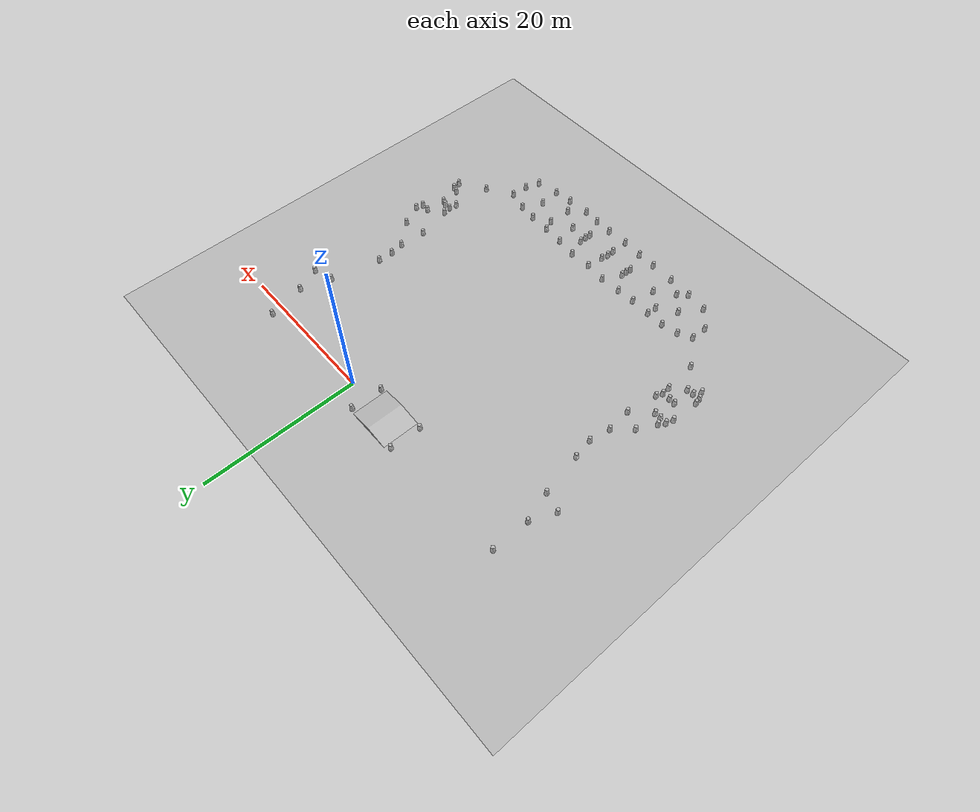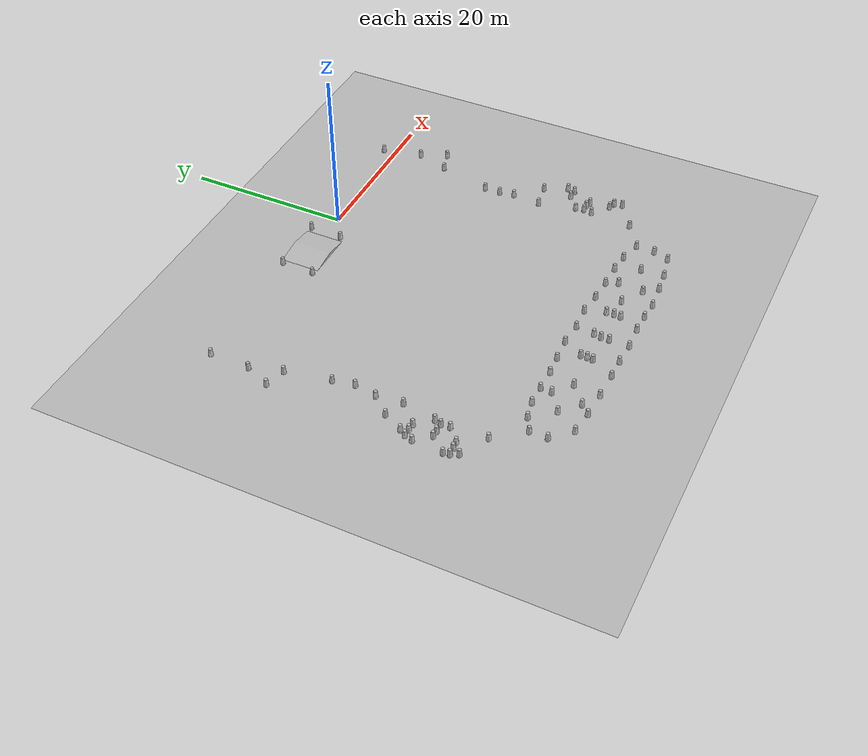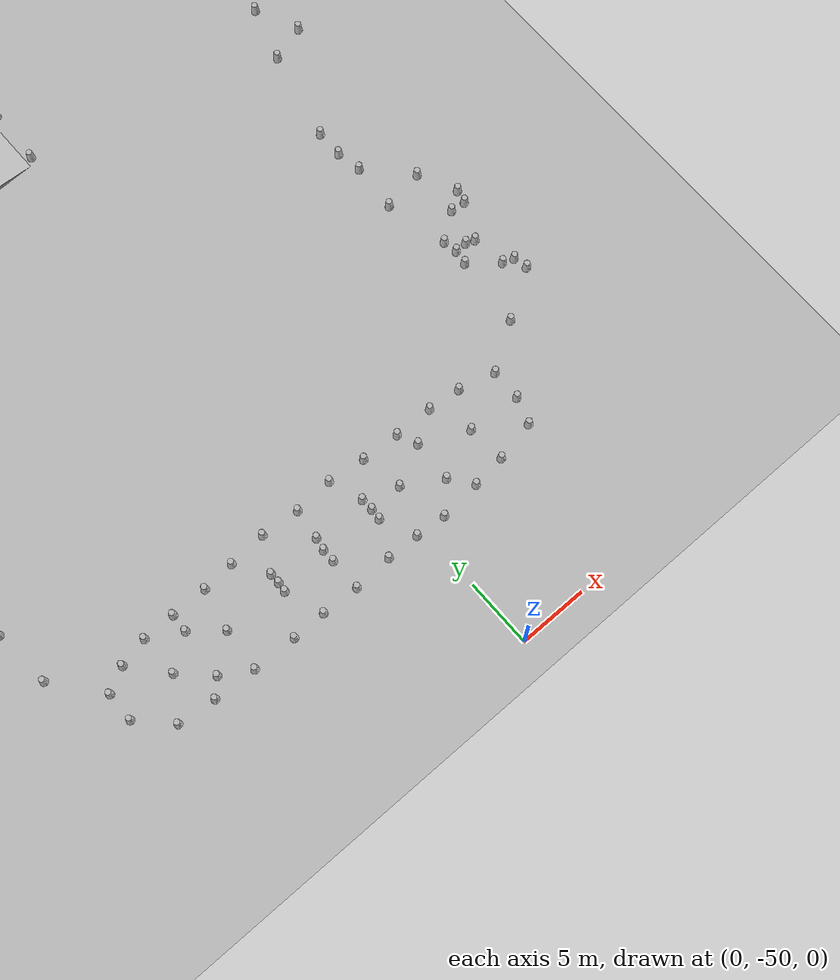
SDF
<?xml version="1.0"?>
<sdf version="1.9">
  <world name="default">
    <scene>
      <ambient>0.8 0.8 0.8 1</ambient>
      <background>0.6 0.75 0.9 1</background>
      <grid>false</grid>
      <shadows>1</shadows>
    </scene>

    <spherical_coordinates>
      <surface_model>EARTH_WGS84</surface_model>
      <world_frame_orientation>ENU</world_frame_orientation>
      <latitude_deg>42.66791</latitude_deg>
      <longitude_deg>-83.21958</longitude_deg>
      <elevation>286</elevation>
      <heading_deg>0</heading_deg>
    </spherical_coordinates>

    <physics name="1ms" type="ODE">
      <max_step_size>0.001</max_step_size>
      <real_time_factor>1.0</real_time_factor>
      <real_time_update_rate>1000</real_time_update_rate>
    </physics>
    <gravity>0 0 -9.8</gravity>
    <magnetic_field>6e-06 2.3e-05 -4.2e-05</magnetic_field>
    <atmosphere type="adiabatic"/>

    <plugin filename="gz-sim-physics-system" name="gz::sim::systems::Physics"/>
    <plugin filename="gz-sim-user-commands-system" name="gz::sim::systems::UserCommands"/>
    <plugin filename="gz-sim-scene-broadcaster-system" name="gz::sim::systems::SceneBroadcaster"/>
    <plugin filename="gz-sim-contact-system" name="gz::sim::systems::Contact"/>
    <plugin filename="gz-sim-imu-system" name="gz::sim::systems::Imu"/>
    <plugin filename="gz-sim-navsat-system" name="gz::sim::systems::NavSat"/>

    <light name="sun" type="directional">
      <cast_shadows>true</cast_shadows>
      <pose>0 0 10 0 0 0</pose>
      <diffuse>0.8 0.8 0.8 1</diffuse>
      <specular>0.2 0.2 0.2 1</specular>
      <direction>-0.5 0.1 -0.9</direction>
    </light>

    <include>
      <uri>model://igvc2027_course</uri>
      <name>course</name>
      <pose>0 0 0 0 0 0</pose>
    </include>

    <include>
      <uri>model://igvc2027_ramp</uri>
      <name>ramp</name>
      <pose>-6.386 0.000 0 0 0 0.0000</pose>
    </include>

    <include>
      <uri>model://igvc2027_barrel_orange</uri>
      <static>true</static>
      <name>barrel_001_orange</name>
      <pose>-28.789 -28.298 0 0 0 0</pose>
    </include>
    <include>
      <uri>model://igvc2027_barrel_orange</uri>
      <static>true</static>
      <name>barrel_002_orange</name>
      <pose>-28.642 -29.047 0 0 0 0</pose>
    </include>
    <include>
      <uri>model://igvc2027_barrel_orange</uri>
      <static>true</static>
      <name>barrel_003_orange</name>
      <pose>-28.584 -24.643 0 0 0 0</pose>
    </include>
    <include>
      <uri>model://igvc2027_barrel_orange</uri>
      <static>true</static>
      <name>barrel_004_orange</name>
      <pose>-28.291 -23.682 0 0 0 0</pose>
    </include>
    <include>
      <uri>model://igvc2027_barrel_orange</uri>
      <static>true</static>
      <name>barrel_005_orange</name>
      <pose>-28.219 -29.931 0 0 0 0</pose>
    </include>
    <include>
      <uri>model://igvc2027_barrel_orange</uri>
      <static>true</static>
      <name>barrel_006_orange</name>
      <pose>-28.142 -6.797 0 0 0 0</pose>
    </include>
    <include>
      <uri>model://igvc2027_barrel_orange</uri>
      <static>true</static>
      <name>barrel_007_orange</name>
      <pose>-27.805 -22.890 0 0 0 0</pose>
    </include>
    <include>
      <uri>model://igvc2027_barrel_orange</uri>
      <static>true</static>
      <name>barrel_008_orange</name>
      <pose>-27.726 -28.994 0 0 0 0</pose>
    </include>
    <include>
      <uri>model://igvc2027_barrel_orange</uri>
      <static>true</static>
      <name>barrel_009_orange</name>
      <pose>-27.398 -23.693 0 0 0 0</pose>
    </include>
    <include>
      <uri>model://igvc2027_barrel_orange</uri>
      <static>true</static>
      <name>barrel_010_orange</name>
      <pose>-27.142 -26.393 0 0 0 0</pose>
    </include>
    <include>
      <uri>model://igvc2027_barrel_orange</uri>
      <static>true</static>
      <name>barrel_011_orange</name>
      <pose>-26.815 -3.697 0 0 0 0</pose>
    </include>
    <include>
      <uri>model://igvc2027_barrel_orange</uri>
      <static>true</static>
      <name>barrel_012_orange</name>
      <pose>-26.890 -28.923 0 0 0 0</pose>
    </include>
    <include>
      <uri>model://igvc2027_barrel_orange</uri>
      <static>true</static>
      <name>barrel_013_orange</name>
      <pose>-26.756 1.197 0 0 0 0</pose>
    </include>
    <include>
      <uri>model://igvc2027_barrel_orange</uri>
      <static>true</static>
      <name>barrel_014_orange</name>
      <pose>-26.582 -23.741 0 0 0 0</pose>
    </include>
    <include>
      <uri>model://igvc2027_barrel_orange</uri>
      <static>true</static>
      <name>barrel_015_orange</name>
      <pose>-26.567 -20.486 0 0 0 0</pose>
    </include>
    <include>
      <uri>model://igvc2027_barrel_orange</uri>
      <static>true</static>
      <name>barrel_016_orange</name>
      <pose>-26.358 -26.411 0 0 0 0</pose>
    </include>
    <include>
      <uri>model://igvc2027_barrel_orange</uri>
      <static>true</static>
      <name>barrel_017_orange</name>
      <pose>-25.668 -7.488 0 0 0 0</pose>
    </include>
    <include>
      <uri>model://igvc2027_barrel_orange</uri>
      <static>true</static>
      <name>barrel_018_orange</name>
      <pose>-25.329 -26.398 0 0 0 0</pose>
    </include>
    <include>
      <uri>model://igvc2027_barrel_orange</uri>
      <static>true</static>
      <name>barrel_019_orange</name>
      <pose>-25.255 -27.473 0 0 0 0</pose>
    </include>
    <include>
      <uri>model://igvc2027_barrel_orange</uri>
      <static>true</static>
      <name>barrel_020_orange</name>
      <pose>-25.009 -25.555 0 0 0 0</pose>
    </include>
    <include>
      <uri>model://igvc2027_barrel_orange</uri>
      <static>true</static>
      <name>barrel_021_orange</name>
      <pose>-24.921 -31.730 0 0 0 0</pose>
    </include>
    <include>
      <uri>model://igvc2027_barrel_orange</uri>
      <static>true</static>
      <name>barrel_022_orange</name>
      <pose>-24.619 -18.291 0 0 0 0</pose>
    </include>
    <include>
      <uri>model://igvc2027_barrel_orange</uri>
      <static>true</static>
      <name>barrel_023_orange</name>
      <pose>-24.621 -12.947 0 0 0 0</pose>
    </include>
    <include>
      <uri>model://igvc2027_barrel_orange</uri>
      <static>true</static>
      <name>barrel_024_orange</name>
      <pose>-24.315 -21.492 0 0 0 0</pose>
    </include>
    <include>
      <uri>model://igvc2027_barrel_orange</uri>
      <static>true</static>
      <name>barrel_025_orange</name>
      <pose>-24.139 -15.559 0 0 0 0</pose>
    </include>
    <include>
      <uri>model://igvc2027_barrel_orange</uri>
      <static>true</static>
      <name>barrel_026_orange</name>
      <pose>-22.295 -37.294 0 0 0 0</pose>
    </include>
    <include>
      <uri>model://igvc2027_barrel_orange</uri>
      <static>true</static>
      <name>barrel_027_orange</name>
      <pose>-22.241 -35.149 0 0 0 0</pose>
    </include>
    <include>
      <uri>model://igvc2027_barrel_orange</uri>
      <static>true</static>
      <name>barrel_028_orange</name>
      <pose>-18.360 -36.776 0 0 0 0</pose>
    </include>
    <include>
      <uri>model://igvc2027_barrel_orange</uri>
      <static>true</static>
      <name>barrel_029_orange</name>
      <pose>-16.321 -38.735 0 0 0 0</pose>
    </include>
    <include>
      <uri>model://igvc2027_barrel_orange</uri>
      <static>true</static>
      <name>barrel_030_orange</name>
      <pose>-16.037 -35.136 0 0 0 0</pose>
    </include>
    <include>
      <uri>model://igvc2027_barrel_orange</uri>
      <static>true</static>
      <name>barrel_031_orange</name>
      <pose>-13.978 -36.876 0 0 0 0</pose>
    </include>
    <include>
      <uri>model://igvc2027_barrel_orange</uri>
      <static>true</static>
      <name>barrel_032_orange</name>
      <pose>-10.137 -2.143 0 0 0 0</pose>
    </include>
    <include>
      <uri>model://igvc2027_barrel_orange</uri>
      <static>true</static>
      <name>barrel_033_orange</name>
      <pose>-10.028 1.916 0 0 0 0</pose>
    </include>
    <include>
      <uri>model://igvc2027_barrel_orange</uri>
      <static>true</static>
      <name>barrel_034_orange</name>
      <pose>-9.524 -37.331 0 0 0 0</pose>
    </include>
    <include>
      <uri>model://igvc2027_barrel_orange</uri>
      <static>true</static>
      <name>barrel_035_orange</name>
      <pose>-9.454 -36.629 0 0 0 0</pose>
    </include>
    <include>
      <uri>model://igvc2027_barrel_orange</uri>
      <static>true</static>
      <name>barrel_036_orange</name>
      <pose>-9.452 -35.869 0 0 0 0</pose>
    </include>
    <include>
      <uri>model://igvc2027_barrel_orange</uri>
      <static>true</static>
      <name>barrel_037_orange</name>
      <pose>-5.842 -37.853 0 0 0 0</pose>
    </include>
    <include>
      <uri>model://igvc2027_barrel_orange</uri>
      <static>true</static>
      <name>barrel_038_orange</name>
      <pose>-5.841 -36.882 0 0 0 0</pose>
    </include>
    <include>
      <uri>model://igvc2027_barrel_orange</uri>
      <static>true</static>
      <name>barrel_039_orange</name>
      <pose>-5.669 -35.964 0 0 0 0</pose>
    </include>
    <include>
      <uri>model://igvc2027_barrel_orange</uri>
      <static>true</static>
      <name>barrel_040_orange</name>
      <pose>-2.991 -1.966 0 0 0 0</pose>
    </include>
    <include>
      <uri>model://igvc2027_barrel_orange</uri>
      <static>true</static>
      <name>barrel_041_orange</name>
      <pose>-2.857 2.140 0 0 0 0</pose>
    </include>
    <include>
      <uri>model://igvc2027_barrel_orange</uri>
      <static>true</static>
      <name>barrel_042_orange</name>
      <pose>-1.725 -37.671 0 0 0 0</pose>
    </include>
    <include>
      <uri>model://igvc2027_barrel_orange</uri>
      <static>true</static>
      <name>barrel_043_orange</name>
      <pose>-1.668 -36.862 0 0 0 0</pose>
    </include>
    <include>
      <uri>model://igvc2027_barrel_orange</uri>
      <static>true</static>
      <name>barrel_044_orange</name>
      <pose>-1.709 -35.956 0 0 0 0</pose>
    </include>
    <include>
      <uri>model://igvc2027_barrel_orange</uri>
      <static>true</static>
      <name>barrel_045_orange</name>
      <pose>0.749 -36.864 0 0 0 0</pose>
    </include>
    <include>
      <uri>model://igvc2027_barrel_orange</uri>
      <static>true</static>
      <name>barrel_046_orange</name>
      <pose>3.427 -38.494 0 0 0 0</pose>
    </include>
    <include>
      <uri>model://igvc2027_barrel_orange</uri>
      <static>true</static>
      <name>barrel_047_orange</name>
      <pose>3.572 -35.456 0 0 0 0</pose>
    </include>
    <include>
      <uri>model://igvc2027_barrel_orange</uri>
      <static>true</static>
      <name>barrel_048_orange</name>
      <pose>6.900 -37.035 0 0 0 0</pose>
    </include>
    <include>
      <uri>model://igvc2027_barrel_orange</uri>
      <static>true</static>
      <name>barrel_049_orange</name>
      <pose>10.711 -37.338 0 0 0 0</pose>
    </include>
    <include>
      <uri>model://igvc2027_barrel_orange</uri>
      <static>true</static>
      <name>barrel_050_orange</name>
      <pose>10.777 -35.074 0 0 0 0</pose>
    </include>
    <include>
      <uri>model://igvc2027_barrel_orange</uri>
      <static>true</static>
      <name>barrel_051_orange</name>
      <pose>13.311 -15.863 0 0 0 0</pose>
    </include>
    <include>
      <uri>model://igvc2027_barrel_orange</uri>
      <static>true</static>
      <name>barrel_052_orange</name>
      <pose>13.404 -21.158 0 0 0 0</pose>
    </include>
    <include>
      <uri>model://igvc2027_barrel_orange</uri>
      <static>true</static>
      <name>barrel_053_orange</name>
      <pose>13.357 -13.846 0 0 0 0</pose>
    </include>
    <include>
      <uri>model://igvc2027_barrel_orange</uri>
      <static>true</static>
      <name>barrel_054_orange</name>
      <pose>13.643 -17.682 0 0 0 0</pose>
    </include>
    <include>
      <uri>model://igvc2027_barrel_orange</uri>
      <static>true</static>
      <name>barrel_055_orange</name>
      <pose>14.082 -32.949 0 0 0 0</pose>
    </include>
    <include>
      <uri>model://igvc2027_barrel_orange</uri>
      <static>true</static>
      <name>barrel_056_orange</name>
      <pose>14.498 -27.799 0 0 0 0</pose>
    </include>
    <include>
      <uri>model://igvc2027_barrel_orange</uri>
      <static>true</static>
      <name>barrel_057_orange</name>
      <pose>14.471 -25.700 0 0 0 0</pose>
    </include>
    <include>
      <uri>model://igvc2027_barrel_orange</uri>
      <static>true</static>
      <name>barrel_058_orange</name>
      <pose>14.648 -26.745 0 0 0 0</pose>
    </include>
    <include>
      <uri>model://igvc2027_barrel_orange</uri>
      <static>true</static>
      <name>barrel_059_orange</name>
      <pose>14.904 -7.307 0 0 0 0</pose>
    </include>
    <include>
      <uri>model://igvc2027_barrel_orange</uri>
      <static>true</static>
      <name>barrel_060_orange</name>
      <pose>15.064 1.503 0 0 0 0</pose>
    </include>
    <include>
      <uri>model://igvc2027_barrel_orange</uri>
      <static>true</static>
      <name>barrel_061_orange</name>
      <pose>15.521 -26.723 0 0 0 0</pose>
    </include>
    <include>
      <uri>model://igvc2027_barrel_orange</uri>
      <static>true</static>
      <name>barrel_062_orange</name>
      <pose>16.137 -3.352 0 0 0 0</pose>
    </include>
    <include>
      <uri>model://igvc2027_barrel_orange</uri>
      <static>true</static>
      <name>barrel_063_orange</name>
      <pose>16.407 -24.267 0 0 0 0</pose>
    </include>
    <include>
      <uri>model://igvc2027_barrel_orange</uri>
      <static>true</static>
      <name>barrel_064_orange</name>
      <pose>16.403 -20.653 0 0 0 0</pose>
    </include>
    <include>
      <uri>model://igvc2027_barrel_orange</uri>
      <static>true</static>
      <name>barrel_065_orange</name>
      <pose>16.483 -29.448 0 0 0 0</pose>
    </include>
    <include>
      <uri>model://igvc2027_barrel_orange</uri>
      <static>true</static>
      <name>barrel_066_orange</name>
      <pose>16.170 -26.962 0 0 0 0</pose>
    </include>
    <include>
      <uri>model://igvc2027_barrel_orange</uri>
      <static>true</static>
      <name>barrel_067_orange</name>
      <pose>17.285 -29.744 0 0 0 0</pose>
    </include>
    <include>
      <uri>model://igvc2027_barrel_orange</uri>
      <static>true</static>
      <name>barrel_068_orange</name>
      <pose>17.494 -30.782 0 0 0 0</pose>
    </include>
    <include>
      <uri>model://igvc2027_barrel_orange</uri>
      <static>true</static>
      <name>barrel_069_orange</name>
      <pose>17.489 -24.362 0 0 0 0</pose>
    </include>
    <include>
      <uri>model://igvc2027_barrel_orange</uri>
      <static>true</static>
      <name>barrel_070_orange</name>
      <pose>17.491 -6.523 0 0 0 0</pose>
    </include>
    <include>
      <uri>model://igvc2027_barrel_orange</uri>
      <static>true</static>
      <name>barrel_071_orange</name>
      <pose>17.721 -23.392 0 0 0 0</pose>
    </include>
    <include>
      <uri>model://igvc2027_barrel_yellow</uri>
      <static>true</static>
      <name>barrel_072_yellow</name>
      <pose>-20.496 -34.233 0 0 0 0</pose>
    </include>
    <include>
      <uri>model://igvc2027_barrel_yellow</uri>
      <static>true</static>
      <name>barrel_073_yellow</name>
      <pose>-11.024 -40.081 0 0 0 0</pose>
    </include>
    <include>
      <uri>model://igvc2027_barrel_yellow</uri>
      <static>true</static>
      <name>barrel_074_yellow</name>
      <pose>-10.965 -33.660 0 0 0 0</pose>
    </include>
    <include>
      <uri>model://igvc2027_barrel_yellow</uri>
      <static>true</static>
      <name>barrel_075_yellow</name>
      <pose>-0.596 -40.150 0 0 0 0</pose>
    </include>
    <include>
      <uri>model://igvc2027_barrel_yellow</uri>
      <static>true</static>
      <name>barrel_076_yellow</name>
      <pose>0.167 -33.890 0 0 0 0</pose>
    </include>
    <include>
      <uri>model://igvc2027_barrel_yellow</uri>
      <static>true</static>
      <name>barrel_077_yellow</name>
      <pose>10.048 -39.253 0 0 0 0</pose>
    </include>
    <include>
      <uri>model://igvc2027_barrel_red</uri>
      <static>true</static>
      <name>barrel_078_red</name>
      <pose>-20.151 -39.498 0 0 0 0</pose>
    </include>
    <include>
      <uri>model://igvc2027_barrel_red</uri>
      <static>true</static>
      <name>barrel_079_red</name>
      <pose>-13.330 -33.818 0 0 0 0</pose>
    </include>
    <include>
      <uri>model://igvc2027_barrel_red</uri>
      <static>true</static>
      <name>barrel_080_red</name>
      <pose>-8.547 -40.084 0 0 0 0</pose>
    </include>
    <include>
      <uri>model://igvc2027_barrel_red</uri>
      <static>true</static>
      <name>barrel_081_red</name>
      <pose>-2.547 -33.566 0 0 0 0</pose>
    </include>
    <include>
      <uri>model://igvc2027_barrel_red</uri>
      <static>true</static>
      <name>barrel_082_red</name>
      <pose>1.634 -40.330 0 0 0 0</pose>
    </include>
    <include>
      <uri>model://igvc2027_barrel_red</uri>
      <static>true</static>
      <name>barrel_083_red</name>
      <pose>8.138 -34.383 0 0 0 0</pose>
    </include>
    <include>
      <uri>model://igvc2027_barrel_green</uri>
      <static>true</static>
      <name>barrel_084_green</name>
      <pose>-17.376 -39.809 0 0 0 0</pose>
    </include>
    <include>
      <uri>model://igvc2027_barrel_green</uri>
      <static>true</static>
      <name>barrel_085_green</name>
      <pose>-15.969 -33.793 0 0 0 0</pose>
    </include>
    <include>
      <uri>model://igvc2027_barrel_green</uri>
      <static>true</static>
      <name>barrel_086_green</name>
      <pose>-5.832 -40.222 0 0 0 0</pose>
    </include>
    <include>
      <uri>model://igvc2027_barrel_green</uri>
      <static>true</static>
      <name>barrel_087_green</name>
      <pose>-5.402 -33.734 0 0 0 0</pose>
    </include>
    <include>
      <uri>model://igvc2027_barrel_green</uri>
      <static>true</static>
      <name>barrel_088_green</name>
      <pose>4.634 -40.089 0 0 0 0</pose>
    </include>
    <include>
      <uri>model://igvc2027_barrel_green</uri>
      <static>true</static>
      <name>barrel_089_green</name>
      <pose>5.758 -34.137 0 0 0 0</pose>
    </include>
    <include>
      <uri>model://igvc2027_barrel_black</uri>
      <static>true</static>
      <name>barrel_090_black</name>
      <pose>-18.343 -33.799 0 0 0 0</pose>
    </include>
    <include>
      <uri>model://igvc2027_barrel_black</uri>
      <static>true</static>
      <name>barrel_091_black</name>
      <pose>-14.234 -39.985 0 0 0 0</pose>
    </include>
    <include>
      <uri>model://igvc2027_barrel_black</uri>
      <static>true</static>
      <name>barrel_092_black</name>
      <pose>-8.209 -33.496 0 0 0 0</pose>
    </include>
    <include>
      <uri>model://igvc2027_barrel_black</uri>
      <static>true</static>
      <name>barrel_093_black</name>
      <pose>-2.965 -40.077 0 0 0 0</pose>
    </include>
    <include>
      <uri>model://igvc2027_barrel_black</uri>
      <static>true</static>
      <name>barrel_094_black</name>
      <pose>2.953 -34.066 0 0 0 0</pose>
    </include>
    <include>
      <uri>model://igvc2027_barrel_black</uri>
      <static>true</static>
      <name>barrel_095_black</name>
      <pose>7.099 -39.818 0 0 0 0</pose>
    </include>

    <gui fullscreen="0">
      <camera name="user_camera">
        <pose>43.2 20.0 45 0 0.75 2.6</pose>
        <view_controller>orbit</view_controller>
        <projection_type>perspective</projection_type>
      </camera>
    </gui>
  </world>
</sdf>

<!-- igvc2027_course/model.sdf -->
<sdf version="1.9">
  <model name="igvc2027_course">
    <static>true</static>
    <link name="link">
      <collision name="ground">
        <geometry><plane><normal>0 0 1</normal><size>200 200</size></plane></geometry>
        <surface><friction><ode><mu>0.9</mu><mu2>0.9</mu2></ode></friction></surface>
      </collision>
      <visual name="surface">
        <cast_shadows>false</cast_shadows>
        <geometry><mesh><uri>model://igvc2027_course/meshes/course.obj</uri></mesh></geometry>
      </visual>
    </link>
  </model>
</sdf>

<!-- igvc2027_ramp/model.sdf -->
<sdf version="1.9">
  <model name="igvc2027_ramp">
    <static>true</static>
    <link name="link">
      <collision name="collision">
        <geometry><mesh><uri>model://igvc2027_ramp/meshes/ramp.obj</uri></mesh></geometry>
        <surface><friction><ode><mu>0.9</mu><mu2>0.9</mu2></ode></friction></surface>
      </collision>
      <visual name="visual">
        <geometry><mesh><uri>model://igvc2027_ramp/meshes/ramp.obj</uri></mesh></geometry>
      </visual>
    </link>
  </model>
</sdf>

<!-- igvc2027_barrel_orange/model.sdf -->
<sdf version="1.9">
  <model name="igvc2027_barrel_orange">
    <link name="link">
      <inertial>
        <pose>0 0 0.336 0 0 0</pose>
        <mass>5.0</mass>
        <inertia><ixx>0.53</ixx><iyy>0.53</iyy><izz>0.22</izz><ixy>0</ixy><ixz>0</ixz><iyz>0</iyz></inertia>
      </inertial>
      <collision name="collision">
        <pose>0 0 0.504 0 0 0</pose>
        <geometry><cylinder><radius>0.298</radius><length>1.008</length></cylinder></geometry>
      </collision>
      <visual name="visual">
        <geometry><mesh><uri>model://igvc2027_barrel_orange/meshes/barrel.obj</uri></mesh></geometry>
      </visual>
    </link>
  </model>
</sdf>

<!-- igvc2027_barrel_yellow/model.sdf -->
<sdf version="1.9">
  <model name="igvc2027_barrel_yellow">
    <link name="link">
      <inertial>
        <pose>0 0 0.336 0 0 0</pose>
        <mass>5.0</mass>
        <inertia><ixx>0.53</ixx><iyy>0.53</iyy><izz>0.22</izz><ixy>0</ixy><ixz>0</ixz><iyz>0</iyz></inertia>
      </inertial>
      <collision name="collision">
        <pose>0 0 0.504 0 0 0</pose>
        <geometry><cylinder><radius>0.298</radius><length>1.008</length></cylinder></geometry>
      </collision>
      <visual name="visual">
        <geometry><mesh><uri>model://igvc2027_barrel_yellow/meshes/barrel.obj</uri></mesh></geometry>
      </visual>
    </link>
  </model>
</sdf>

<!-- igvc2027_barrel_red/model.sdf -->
<sdf version="1.9">
  <model name="igvc2027_barrel_red">
    <link name="link">
      <inertial>
        <pose>0 0 0.336 0 0 0</pose>
        <mass>5.0</mass>
        <inertia><ixx>0.53</ixx><iyy>0.53</iyy><izz>0.22</izz><ixy>0</ixy><ixz>0</ixz><iyz>0</iyz></inertia>
      </inertial>
      <collision name="collision">
        <pose>0 0 0.504 0 0 0</pose>
        <geometry><cylinder><radius>0.298</radius><length>1.008</length></cylinder></geometry>
      </collision>
      <visual name="visual">
        <geometry><mesh><uri>model://igvc2027_barrel_red/meshes/barrel.obj</uri></mesh></geometry>
      </visual>
    </link>
  </model>
</sdf>

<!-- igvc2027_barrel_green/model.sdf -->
<sdf version="1.9">
  <model name="igvc2027_barrel_green">
    <link name="link">
      <inertial>
        <pose>0 0 0.336 0 0 0</pose>
        <mass>5.0</mass>
        <inertia><ixx>0.53</ixx><iyy>0.53</iyy><izz>0.22</izz><ixy>0</ixy><ixz>0</ixz><iyz>0</iyz></inertia>
      </inertial>
      <collision name="collision">
        <pose>0 0 0.504 0 0 0</pose>
        <geometry><cylinder><radius>0.298</radius><length>1.008</length></cylinder></geometry>
      </collision>
      <visual name="visual">
        <geometry><mesh><uri>model://igvc2027_barrel_green/meshes/barrel.obj</uri></mesh></geometry>
      </visual>
    </link>
  </model>
</sdf>

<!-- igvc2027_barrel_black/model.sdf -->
<sdf version="1.9">
  <model name="igvc2027_barrel_black">
    <link name="link">
      <inertial>
        <pose>0 0 0.336 0 0 0</pose>
        <mass>5.0</mass>
        <inertia><ixx>0.53</ixx><iyy>0.53</iyy><izz>0.22</izz><ixy>0</ixy><ixz>0</ixz><iyz>0</iyz></inertia>
      </inertial>
      <collision name="collision">
        <pose>0 0 0.504 0 0 0</pose>
        <geometry><cylinder><radius>0.298</radius><length>1.008</length></cylinder></geometry>
      </collision>
      <visual name="visual">
        <geometry><mesh><uri>model://igvc2027_barrel_black/meshes/barrel.obj</uri></mesh></geometry>
      </visual>
    </link>
  </model>
</sdf>
